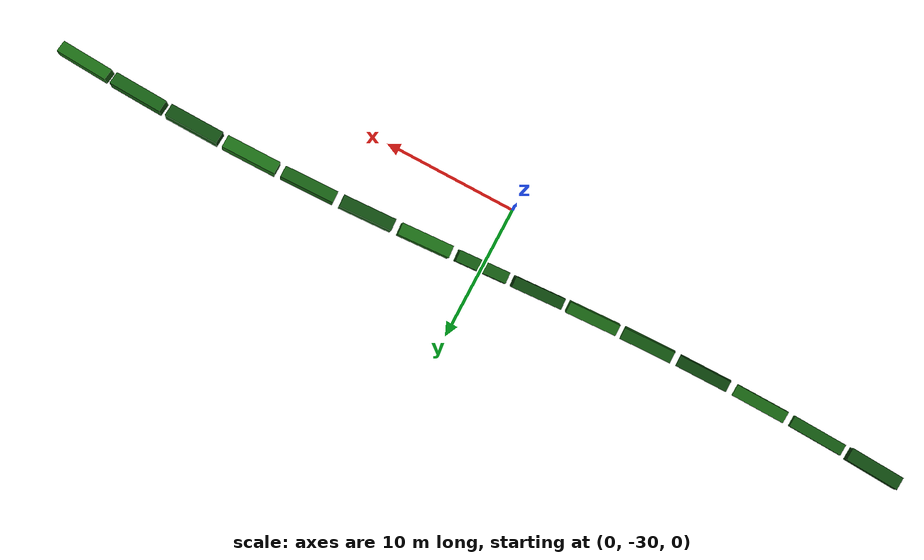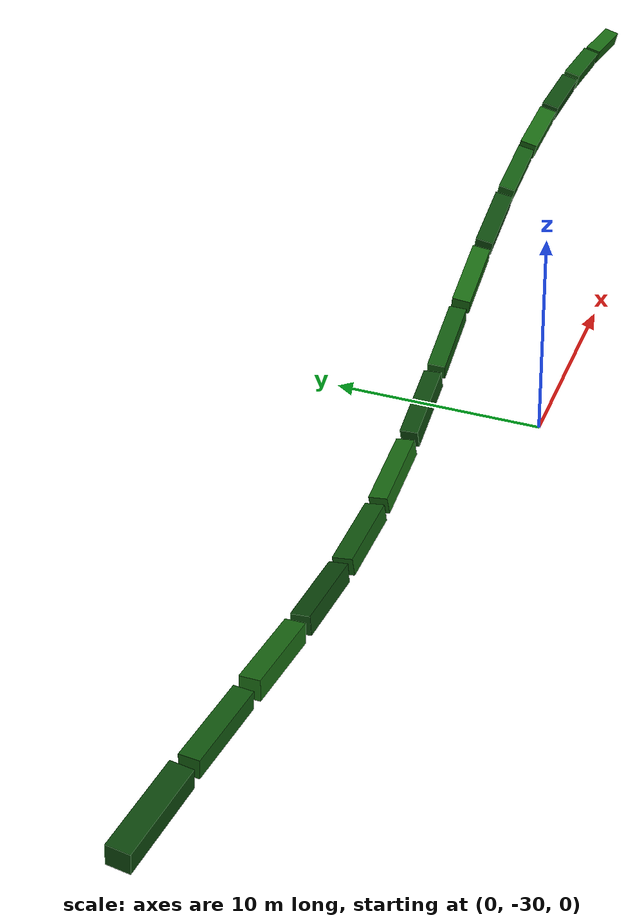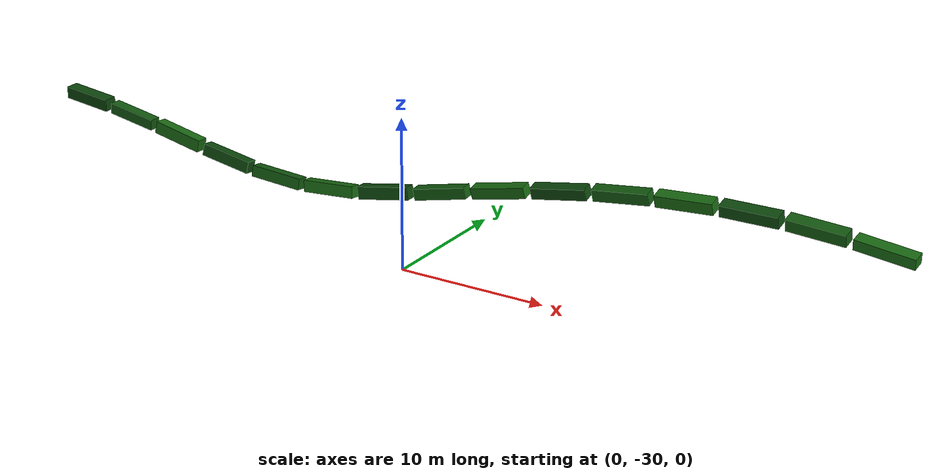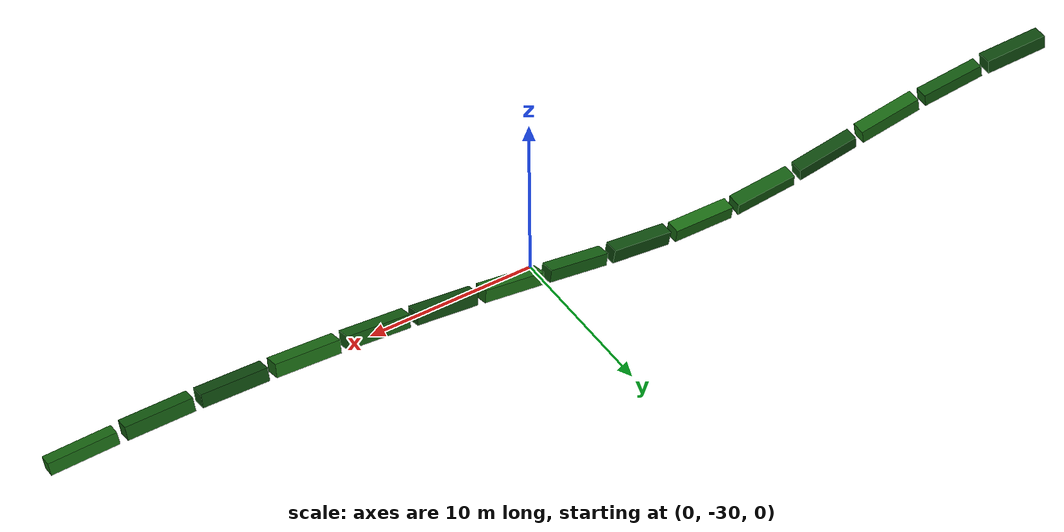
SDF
<sdf version="1.6">
 <world name="mountain_tea_garden_80m">
  <model name="tea_row_00">
   <static>true</static>
   <link name="bush_00">
    <pose>-29 -25.9183 5.09071 0.064143 0.0842919 -0.0509171</pose>
    <collision name="collision">
     <geometry><box><size>3.75 0.893624 0.839996</size></box></geometry>
     <laser_retro>55</laser_retro>
     <surface><friction><ode><mu>1.15</mu><mu2>1.15</mu2></ode></friction></surface>
    </collision>
    <visual name="visual">
     <geometry><box><size>3.75 0.893624 0.839996</size></box></geometry>
     <material>
      <ambient>0.055 0.29 0.055 1</ambient>
      <diffuse>0.055 0.29 0.055 1</diffuse>
      <specular>0.05 0.05 0.05 1</specular>
     </material>
    </visual>
   </link>
   <link name="bush_01">
    <pose>-24.85 -26.0982 4.55602 0.0157015 0.149454 -0.0348228</pose>
    <collision name="collision">
     <geometry><box><size>3.75 0.78362 0.750846</size></box></geometry>
     <laser_retro>55</laser_retro>
     <surface><friction><ode><mu>1.15</mu><mu2>1.15</mu2></ode></friction></surface>
    </collision>
    <visual name="visual">
     <geometry><box><size>3.75 0.78362 0.750846</size></box></geometry>
     <material>
      <ambient>0.075 0.36 0.065 1</ambient>
      <diffuse>0.075 0.36 0.065 1</diffuse>
      <specular>0.05 0.05 0.05 1</specular>
     </material>
    </visual>
   </link>
   <link name="bush_02">
    <pose>-20.7 -26.2012 3.8757 -0.0466893 0.190635 -0.0142239</pose>
    <collision name="collision">
     <geometry><box><size>3.75 0.815882 0.846742</size></box></geometry>
     <laser_retro>55</laser_retro>
     <surface><friction><ode><mu>1.15</mu><mu2>1.15</mu2></ode></friction></surface>
    </collision>
    <visual name="visual">
     <geometry><box><size>3.75 0.815882 0.846742</size></box></geometry>
     <material>
      <ambient>0.1 0.42 0.075 1</ambient>
      <diffuse>0.1 0.42 0.075 1</diffuse>
      <specular>0.05 0.05 0.05 1</specular>
     </material>
    </visual>
   </link>
   <link name="bush_03">
    <pose>-16.55 -26.2138 3.07548 -0.106985 0.171181 0.00821945</pose>
    <collision name="collision">
     <geometry><box><size>3.75 0.784117 0.818555</size></box></geometry>
     <laser_retro>55</laser_retro>
     <surface><friction><ode><mu>1.15</mu><mu2>1.15</mu2></ode></friction></surface>
    </collision>
    <visual name="visual">
     <geometry><box><size>3.75 0.784117 0.818555</size></box></geometry>
     <material>
      <ambient>0.055 0.29 0.055 1</ambient>
      <diffuse>0.055 0.29 0.055 1</diffuse>
      <specular>0.05 0.05 0.05 1</specular>
     </material>
    </visual>
   </link>
   <link name="bush_04">
    <pose>-12.4 -26.1344 2.50865 -0.135952 0.076252 0.0295966</pose>
    <collision name="collision">
     <geometry><box><size>3.75 0.842907 0.766013</size></box></geometry>
     <laser_retro>55</laser_retro>
     <surface><friction><ode><mu>1.15</mu><mu2>1.15</mu2></ode></friction></surface>
    </collision>
    <visual name="visual">
     <geometry><box><size>3.75 0.842907 0.766013</size></box></geometry>
     <material>
      <ambient>0.075 0.36 0.065 1</ambient>
      <diffuse>0.075 0.36 0.065 1</diffuse>
      <specular>0.05 0.05 0.05 1</specular>
     </material>
    </visual>
   </link>
   <link name="bush_05">
    <pose>-8.25 -25.9733 2.48361 -0.110948 -0.0585681 0.0471422</pose>
    <collision name="collision">
     <geometry><box><size>3.75 0.809823 0.793594</size></box></geometry>
     <laser_retro>55</laser_retro>
     <surface><friction><ode><mu>1.15</mu><mu2>1.15</mu2></ode></friction></surface>
    </collision>
    <visual name="visual">
     <geometry><box><size>3.75 0.809823 0.793594</size></box></geometry>
     <material>
      <ambient>0.1 0.42 0.075 1</ambient>
      <diffuse>0.1 0.42 0.075 1</diffuse>
      <specular>0.05 0.05 0.05 1</specular>
     </material>
    </visual>
   </link>
   <link name="bush_06">
    <pose>-4.1 -25.7513 3.00051 -0.0351008 -0.164965 0.0586045</pose>
    <collision name="collision">
     <geometry><box><size>3.75 0.794615 0.853127</size></box></geometry>
     <laser_retro>55</laser_retro>
     <surface><friction><ode><mu>1.15</mu><mu2>1.15</mu2></ode></friction></surface>
    </collision>
    <visual name="visual">
     <geometry><box><size>3.75 0.794615 0.853127</size></box></geometry>
     <material>
      <ambient>0.055 0.29 0.055 1</ambient>
      <diffuse>0.055 0.29 0.055 1</diffuse>
      <specular>0.05 0.05 0.05 1</specular>
     </material>
    </visual>
   </link>
   <link name="bush_07">
    <pose>0.05 -25.4969 3.75717 0.0616149 -0.205876 0.0625265</pose>
    <collision name="collision">
     <geometry><box><size>3.75 0.810346 0.758996</size></box></geometry>
     <laser_retro>55</laser_retro>
     <surface><friction><ode><mu>1.15</mu><mu2>1.15</mu2></ode></friction></surface>
    </collision>
    <visual name="visual">
     <geometry><box><size>3.75 0.810346 0.758996</size></box></geometry>
     <material>
      <ambient>0.075 0.36 0.065 1</ambient>
      <diffuse>0.075 0.36 0.065 1</diffuse>
      <specular>0.05 0.05 0.05 1</specular>
     </material>
    </visual>
   </link>
   <link name="bush_08">
    <pose>4.2 -25.2429 4.60635 0.145028 -0.193895 0.0584129</pose>
    <collision name="collision">
     <geometry><box><size>3.75 0.858912 0.745281</size></box></geometry>
     <laser_retro>55</laser_retro>
     <surface><friction><ode><mu>1.15</mu><mu2>1.15</mu2></ode></friction></surface>
    </collision>
    <visual name="visual">
     <geometry><box><size>3.75 0.858912 0.745281</size></box></geometry>
     <material>
      <ambient>0.1 0.42 0.075 1</ambient>
      <diffuse>0.1 0.42 0.075 1</diffuse>
      <specular>0.05 0.05 0.05 1</specular>
     </material>
    </visual>
   </link>
   <link name="bush_09">
    <pose>8.35 -25.022 5.35109 0.200214 -0.15775 0.0467833</pose>
    <collision name="collision">
     <geometry><box><size>3.75 0.857217 0.748906</size></box></geometry>
     <laser_retro>55</laser_retro>
     <surface><friction><ode><mu>1.15</mu><mu2>1.15</mu2></ode></friction></surface>
    </collision>
    <visual name="visual">
     <geometry><box><size>3.75 0.857217 0.748906</size></box></geometry>
     <material>
      <ambient>0.055 0.29 0.055 1</ambient>
      <diffuse>0.055 0.29 0.055 1</diffuse>
      <specular>0.05 0.05 0.05 1</specular>
     </material>
    </visual>
   </link>
   <link name="bush_10">
    <pose>12.5 -24.8626 5.94348 0.230316 -0.113711 0.0291162</pose>
    <collision name="collision">
     <geometry><box><size>3.75 0.815023 0.795412</size></box></geometry>
     <laser_retro>55</laser_retro>
     <surface><friction><ode><mu>1.15</mu><mu2>1.15</mu2></ode></friction></surface>
    </collision>
    <visual name="visual">
     <geometry><box><size>3.75 0.815023 0.795412</size></box></geometry>
     <material>
      <ambient>0.075 0.36 0.065 1</ambient>
      <diffuse>0.075 0.36 0.065 1</diffuse>
      <specular>0.05 0.05 0.05 1</specular>
     </material>
    </visual>
   </link>
   <link name="bush_11">
    <pose>16.65 -24.7854 6.30987 0.243292 -0.0642154 0.00767947</pose>
    <collision name="collision">
     <geometry><box><size>3.75 0.875957 0.783506</size></box></geometry>
     <laser_retro>55</laser_retro>
     <surface><friction><ode><mu>1.15</mu><mu2>1.15</mu2></ode></friction></surface>
    </collision>
    <visual name="visual">
     <geometry><box><size>3.75 0.875957 0.783506</size></box></geometry>
     <material>
      <ambient>0.1 0.42 0.075 1</ambient>
      <diffuse>0.1 0.42 0.075 1</diffuse>
      <specular>0.05 0.05 0.05 1</specular>
     </material>
    </visual>
   </link>
   <link name="bush_12">
    <pose>20.8 -24.8003 6.46263 0.245203 -0.00990483 -0.0147534</pose>
    <collision name="collision">
     <geometry><box><size>3.75 0.882197 0.779015</size></box></geometry>
     <laser_retro>55</laser_retro>
     <surface><friction><ode><mu>1.15</mu><mu2>1.15</mu2></ode></friction></surface>
    </collision>
    <visual name="visual">
     <geometry><box><size>3.75 0.882197 0.779015</size></box></geometry>
     <material>
      <ambient>0.055 0.29 0.055 1</ambient>
      <diffuse>0.055 0.29 0.055 1</diffuse>
      <specular>0.05 0.05 0.05 1</specular>
     </material>
    </visual>
   </link>
   <link name="bush_13">
    <pose>24.95 -24.9053 6.39905 0.240569 0.0442958 -0.0352733</pose>
    <collision name="collision">
     <geometry><box><size>3.75 0.852411 0.797258</size></box></geometry>
     <laser_retro>55</laser_retro>
     <surface><friction><ode><mu>1.15</mu><mu2>1.15</mu2></ode></friction></surface>
    </collision>
    <visual name="visual">
     <geometry><box><size>3.75 0.852411 0.797258</size></box></geometry>
     <material>
      <ambient>0.075 0.36 0.065 1</ambient>
      <diffuse>0.075 0.36 0.065 1</diffuse>
      <specular>0.05 0.05 0.05 1</specular>
     </material>
    </visual>
   </link>
   <link name="bush_14">
    <pose>29.1 -25.0869 6.06942 0.233761 0.0910172 -0.0512307</pose>
    <collision name="collision">
     <geometry><box><size>3.75 0.808615 0.708817</size></box></geometry>
     <laser_retro>55</laser_retro>
     <surface><friction><ode><mu>1.15</mu><mu2>1.15</mu2></ode></friction></surface>
    </collision>
    <visual name="visual">
     <geometry><box><size>3.75 0.808615 0.708817</size></box></geometry>
     <material>
      <ambient>0.1 0.42 0.075 1</ambient>
      <diffuse>0.1 0.42 0.075 1</diffuse>
      <specular>0.05 0.05 0.05 1</specular>
     </material>
    </visual>
   </link>
  </model>
 </world>
</sdf>
